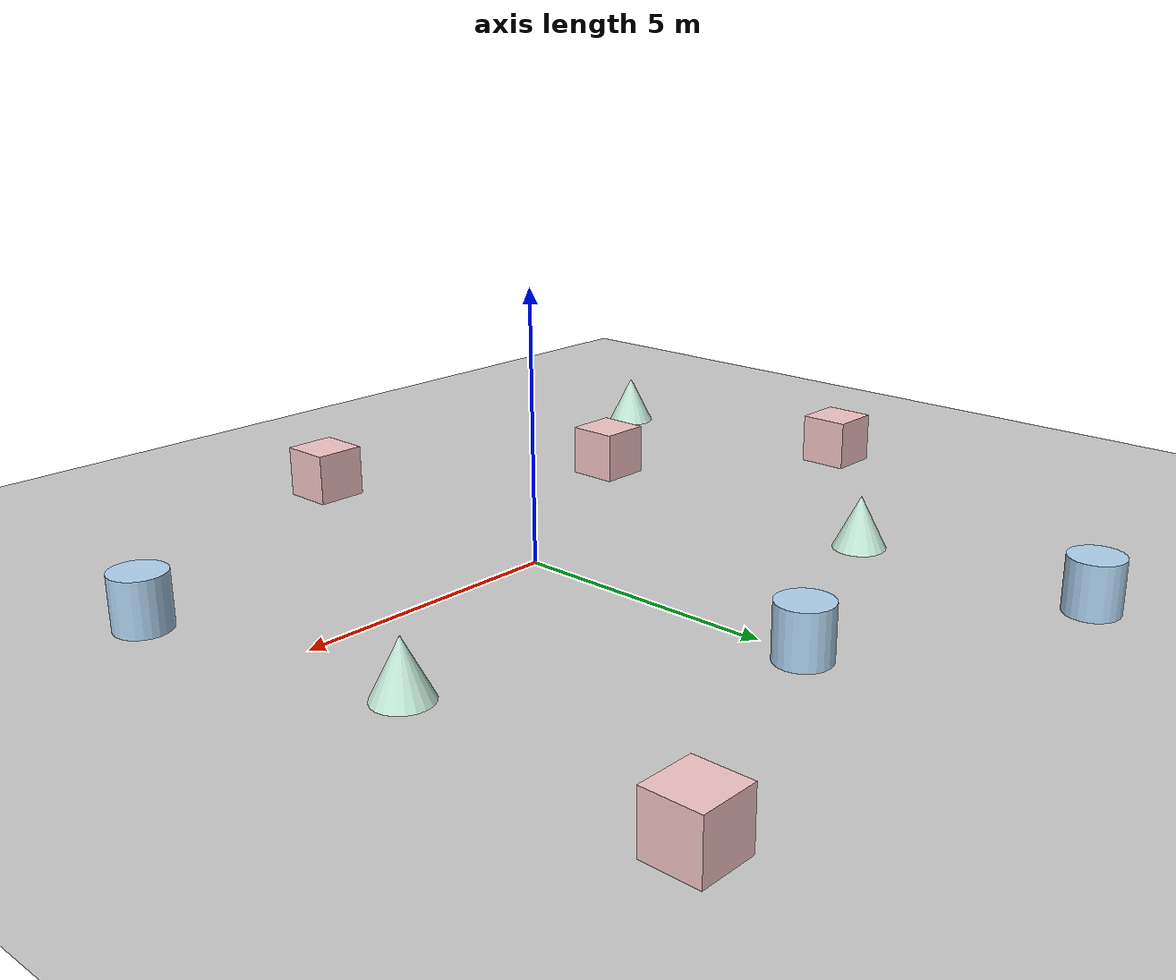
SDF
<sdf version="1.10">
 <world name="default">
  <physics name="1ms" type="ignored">
   <max_step_size>0.001</max_step_size>
   <real_time_factor>1</real_time_factor>
   <real_time_update_rate>1000</real_time_update_rate>
  </physics>
  <plugin name="gz::sim::systems::Physics" filename="gz-sim-physics-system"/>
  <plugin name="gz::sim::systems::UserCommands" filename="gz-sim-user-commands-system"/>
  <plugin name="gz::sim::systems::SceneBroadcaster" filename="gz-sim-scene-broadcaster-system"/>
  <plugin name="gz::sim::systems::Sensors" filename="gz-sim-sensors-system">
   <render_engine>ogre2</render_engine>
  </plugin>
  <gravity>0 0 -9.8000000000000007</gravity>
  <magnetic_field>5.5644999999999998e-06 2.2875799999999999e-05 -4.2388400000000002e-05</magnetic_field>
  <atmosphere type="adiabatic"/>
  <scene>
   <ambient>0.400000006 0.400000006 0.400000006 1</ambient>
   <background>0.699999988 0.699999988 0.699999988 1</background>
   <shadows>true</shadows>
  </scene>
  <model name="ground_plane">
   <static>true</static>
   <link name="link">
    <collision name="collision">
     <geometry><plane><normal>0 0 1</normal><size>100 100</size></plane></geometry>
    </collision>
    <visual name="visual">
     <geometry><plane><normal>0 0 1</normal><size>100 100</size></plane></geometry>
     <material>
      <ambient>0.800000012 0.800000012 0.800000012 1</ambient>
      <diffuse>0.800000012 0.800000012 0.800000012 1</diffuse>
      <specular>0.800000012 0.800000012 0.800000012 1</specular>
     </material>
    </visual>
    <inertial>
     <mass>1</mass>
     <inertia><ixx>1</ixx><ixy>0</ixy><ixz>0</ixz><iyy>1</iyy><iyz>0</iyz><izz>1</izz></inertia>
    </inertial>
   </link>
  </model>
  <model name="box">
   <pose>5.4391672063817591 8.1354530930882092 0.5 0 0 0</pose>
   <link name="box_link">
    <inertial>
     <inertia><ixx>0.16666</ixx><ixy>0</ixy><ixz>0</ixz><iyy>0.16666</iyy><iyz>0</iyz><izz>0.16666</izz></inertia>
     <mass>1</mass>
    </inertial>
    <collision name="box_collision"><geometry><box><size>1 1 1</size></box></geometry></collision>
    <visual name="box_visual">
     <geometry><box><size>1 1 1</size></box></geometry>
     <material>
      <ambient>0.90 0.65 0.65 1</ambient>
      <diffuse>0.97 0.78 0.78 1</diffuse>
      <specular>0.20 0.20 0.20 1</specular>
     </material>
    </visual>
   </link>
   <static>false</static>
  </model>
  <model name="cylinder">
   <pose>0.13549399375915527 5.9519386291503906 0.5 0 0 0</pose>
   <link name="cylinder_link">
    <inertial>
     <inertia>
      <ixx>0.14580000000000001</ixx>
      <ixy>0</ixy>
      <ixz>0</ixz>
      <iyy>0.14580000000000001</iyy>
      <iyz>0</iyz>
      <izz>0.125</izz>
     </inertia>
     <mass>1</mass>
    </inertial>
    <collision name="cylinder_collision">
     <geometry><cylinder><radius>0.5</radius><length>1</length></cylinder></geometry>
    </collision>
    <visual name="cylinder_visual">
     <geometry><cylinder><radius>0.5</radius><length>1</length></cylinder></geometry>
     <material>
      <ambient>0.55 0.72 0.88 1</ambient>
      <diffuse>0.70 0.84 0.96 1</diffuse>
      <specular>0.20 0.20 0.20 1</specular>
     </material>
    </visual>
   </link>
   <static>false</static>
  </model>
  <model name="box_1">
   <pose>-4.8079558424240361 -2.6158063037916155 0.5 0 0 0</pose>
   <link name="box_link">
    <inertial>
     <inertia><ixx>0.16666</ixx><ixy>0</ixy><ixz>0</ixz><iyy>0.16666</iyy><iyz>0</iyz><izz>0.16666</izz></inertia>
     <mass>1</mass>
    </inertial>
    <collision name="box_collision"><geometry><box><size>1 1 1</size></box></geometry></collision>
    <visual name="box_visual">
     <geometry><box><size>1 1 1</size></box></geometry>
     <material>
      <ambient>0.90 0.65 0.65 1</ambient>
      <diffuse>0.97 0.78 0.78 1</diffuse>
      <specular>0.20 0.20 0.20 1</specular>
     </material>
    </visual>
   </link>
   <static>false</static>
  </model>
  <model name="cylinder_1">
   <pose>6.254907476291315 -2.703818405274752 0.5 0 0 0</pose>
   <link name="cylinder_link">
    <inertial>
     <inertia>
      <ixx>0.14580000000000001</ixx>
      <ixy>0</ixy>
      <ixz>0</ixz>
      <iyy>0.14580000000000001</iyy>
      <iyz>0</iyz>
      <izz>0.125</izz>
     </inertia>
     <mass>1</mass>
    </inertial>
    <collision name="cylinder_collision">
     <geometry><cylinder><radius>0.5</radius><length>1</length></cylinder></geometry>
    </collision>
    <visual name="cylinder_visual">
     <geometry><cylinder><radius>0.5</radius><length>1</length></cylinder></geometry>
     <material>
      <ambient>0.55 0.72 0.88 1</ambient>
      <diffuse>0.70 0.84 0.96 1</diffuse>
      <specular>0.20 0.20 0.20 1</specular>
     </material>
    </visual>
   </link>
   <static>false</static>
  </model>
  <model name="cone">
   <pose>5.4763798713684082 2.8458399772644043 0.79188001155853271 0 0 0</pose>
   <link name="cone_link">
    <inertial>
     <inertia>
      <ixx>0.074999999999999997</ixx>
      <ixy>0</ixy>
      <ixz>0</ixz>
      <iyy>0.074999999999999997</iyy>
      <iyz>0</iyz>
      <izz>0.074999999999999997</izz>
     </inertia>
     <mass>1</mass>
    </inertial>
    <collision name="cone_collision">
     <geometry><cone><radius>0.5</radius><length>1</length></cone></geometry>
    </collision>
    <visual name="cone_visual">
     <geometry><cone><radius>0.5</radius><length>1</length></cone></geometry>
     <material>
      <ambient>0.63 0.84 0.74 1</ambient>
      <diffuse>0.78 0.93 0.86 1</diffuse>
      <specular>0.20 0.20 0.20 1</specular>
     </material>
    </visual>
   </link>
   <static>false</static>
  </model>
  <model name="cone_1">
   <pose>-4.5565511319558167 3.9201302738532284 0.5 0 0 0</pose>
   <link name="cone_link">
    <inertial>
     <inertia>
      <ixx>0.074999999999999997</ixx>
      <ixy>0</ixy>
      <ixz>0</ixz>
      <iyy>0.074999999999999997</iyy>
      <iyz>0</iyz>
      <izz>0.074999999999999997</izz>
     </inertia>
     <mass>1</mass>
    </inertial>
    <collision name="cone_collision">
     <geometry><cone><radius>0.5</radius><length>1</length></cone></geometry>
    </collision>
    <visual name="cone_visual">
     <geometry><cone><radius>0.5</radius><length>1</length></cone></geometry>
     <material>
      <ambient>0.63 0.84 0.74 1</ambient>
      <diffuse>0.78 0.93 0.86 1</diffuse>
      <specular>0.20 0.20 0.20 1</specular>
     </material>
    </visual>
   </link>
   <static>false</static>
  </model>
  <model name="box_2">
   <pose>0.11780546425403671 -5.9266596986841318 0.5 0 0 0</pose>
   <link name="box_link">
    <inertial>
     <inertia><ixx>0.16666</ixx><ixy>0</ixy><ixz>0</ixz><iyy>0.16666</iyy><iyz>0</iyz><izz>0.16666</izz></inertia>
     <mass>1</mass>
    </inertial>
    <collision name="box_collision"><geometry><box><size>1 1 1</size></box></geometry></collision>
    <visual name="box_visual">
     <geometry><box><size>1 1 1</size></box></geometry>
     <material>
      <ambient>0.90 0.65 0.65 1</ambient>
      <diffuse>0.97 0.78 0.78 1</diffuse>
      <specular>0.20 0.20 0.20 1</specular>
     </material>
    </visual>
   </link>
   <static>false</static>
  </model>
  <model name="box_1_1">
   <pose>-8.7970497009537905 0.52664853661190447 0.5 0 0 0</pose>
   <link name="box_link">
    <inertial>
     <inertia><ixx>0.16666</ixx><ixy>0</ixy><ixz>0</ixz><iyy>0.16666</iyy><iyz>0</iyz><izz>0.16666</izz></inertia>
     <mass>1</mass>
    </inertial>
    <collision name="box_collision"><geometry><box><size>1 1 1</size></box></geometry></collision>
    <visual name="box_visual">
     <geometry><box><size>1 1 1</size></box></geometry>
     <material>
      <ambient>0.90 0.65 0.65 1</ambient>
      <diffuse>0.97 0.78 0.78 1</diffuse>
      <specular>0.20 0.20 0.20 1</specular>
     </material>
    </visual>
   </link>
   <static>false</static>
  </model>
  <model name="cylinder_2">
   <pose>-4.5947496655145343 8.4501606905892555 0.5 0 0 0</pose>
   <link name="cylinder_link">
    <inertial>
     <inertia>
      <ixx>0.14580000000000001</ixx>
      <ixy>0</ixy>
      <ixz>0</ixz>
      <iyy>0.14580000000000001</iyy>
      <iyz>0</iyz>
      <izz>0.125</izz>
     </inertia>
     <mass>1</mass>
    </inertial>
    <collision name="cylinder_collision">
     <geometry><cylinder><radius>0.5</radius><length>1</length></cylinder></geometry>
    </collision>
    <visual name="cylinder_visual">
     <geometry><cylinder><radius>0.5</radius><length>1</length></cylinder></geometry>
     <material>
      <ambient>0.55 0.72 0.88 1</ambient>
      <diffuse>0.70 0.84 0.96 1</diffuse>
      <specular>0.20 0.20 0.20 1</specular>
     </material>
    </visual>
   </link>
   <static>false</static>
  </model>
  <model name="cone_2">
   <pose>-8.1831310803366755 -4.9394628388417869 0.5 0 0 0</pose>
   <link name="cone_link">
    <inertial>
     <inertia>
      <ixx>0.074999999999999997</ixx>
      <ixy>0</ixy>
      <ixz>0</ixz>
      <iyy>0.074999999999999997</iyy>
      <iyz>0</iyz>
      <izz>0.074999999999999997</izz>
     </inertia>
     <mass>1</mass>
    </inertial>
    <collision name="cone_collision">
     <geometry><cone><radius>0.5</radius><length>1</length></cone></geometry>
    </collision>
    <visual name="cone_visual">
     <geometry><cone><radius>0.5</radius><length>1</length></cone></geometry>
     <material>
      <ambient>0.63 0.84 0.74 1</ambient>
      <diffuse>0.78 0.93 0.86 1</diffuse>
      <specular>0.20 0.20 0.20 1</specular>
     </material>
    </visual>
   </link>
   <static>false</static>
  </model>
  <light name="sun" type="directional">
   <pose>0 0 10 0 0 0</pose>
   <intensity>1</intensity>
   <direction>-0.5 0.10000000000000001 -0.90000000000000002</direction>
   <diffuse>0.800000012 0.800000012 0.800000012 1</diffuse>
   <specular>0.200000003 0.200000003 0.200000003 1</specular>
   <attenuation>
    <range>1000</range>
    <linear>0.01</linear>
    <constant>0.90000000000000002</constant>
    <quadratic>0.001</quadratic>
   </attenuation>
   <spot><inner_angle>0</inner_angle><outer_angle>0</outer_angle><falloff>0</falloff></spot>
  </light>
 </world>
</sdf>
